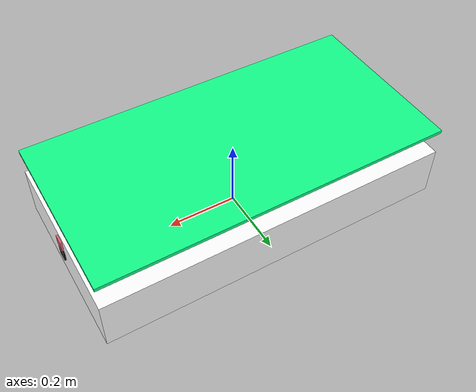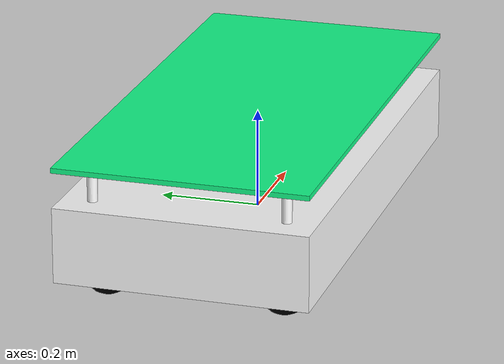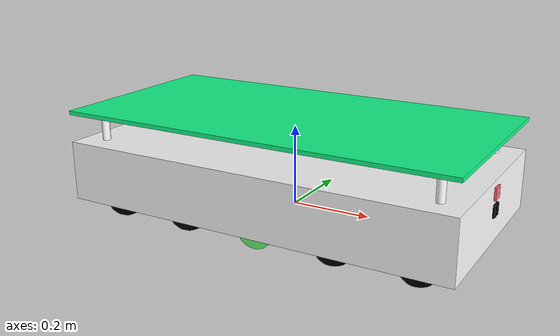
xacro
<?xml version="1.0"?>
<robot xmlns:xacro="http://www.ros.org/wiki/xacro"  name="robot">

    <xacro:arg name="use_ros2_control" default="true"/>

    <xacro:include filename="robotCore.xacro" />
    <xacro:if value="$(arg use_ros2_control)">
        <xacro:include filename="ros2_control.xacro" />
    </xacro:if>
    <xacro:unless value="$(arg use_ros2_control)">
        <xacro:include filename="gazebo_control.xacro" />
    </xacro:unless>
    <xacro:include filename = "lidar.xacro" />
    <xacro:include filename = "camera.xacro" />
    <xacro:include filename = "depthCamera.xacro" />

</robot>

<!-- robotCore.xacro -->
<robot xmlns:xacro="http://www.ros.org/wiki/xacro">

    <xacro:include filename="inertia_macros.xacro" />

    <material name="white">
        <color rgba="1 1 1 1"/>
    </material>

    <material name="orange">
        <color rgba="1 0.3 0.1 1"/>
    </material>

    <material name="blue">
        <color rgba="0.2 0.2 1 1"/>
    </material>

    <material name="black">
        <color rgba="0 0 0 1"/>
    </material>

    <material name="red">
        <color rgba="0.990 0.396 0.455 1"/>
    </material>

    <material name="green">
        <color rgba="0.396 0.990 0.436 1"/>
    </material>

    <material name="sea">
        <color rgba="0.0693 0.990 0.545 1"/>
    </material>

    <!--base_link is the root link of the robot-->
    <link name="base_link">

    </link>

    <!--Foot print link-->
    <joint name="base_footprint_joint" type="fixed">
        <parent link="base_link"/>
        <child link="base_footprint"/>
        <origin xyz="0 0 0" rpy="0 0 0"/>
    </joint>

    <link name="base_footprint">
    </link>

    <joint name="chassis_joint" type="fixed">
        <origin xyz="-0.15 0 0" rpy="0 0 0"/>
        <parent link="base_link"/>
        <child link="chassis"/>
    </joint>

    <link name="chassis">
        <visual>
            <origin xyz="0.15 0 0.075" rpy="0 0 0"/>
            <geometry>
                <box size="1.0 0.5 0.15"/>
            </geometry>
            <material name="white"/>
        </visual>
        <collision>
            <origin xyz="0.15 0 0.075" rpy="0 0 0"/>
            <geometry>
                <box size="1.0 0.5 0.15"/>
            </geometry>
        </collision>
        <xacro:inertial_box mass="0.5" x="1.0" y="0.5" z="0.15">
            <origin xyz="0.15 0 0.075" rpy="0 0 0"/>
        </xacro:inertial_box>
    </link>

    <gazebo reference="chassis">
        <material>Gazebo/White</material>
    </gazebo>

        <!-- Define the table top -->
    <link name="table_top">
        <visual>
            <origin xyz="0.15 0 0.075" rpy="0 0 0"/>
            <geometry>
                <box size="1.0 0.5 0.01"/>
            </geometry>
            <material name="sea"/>
        </visual>
        <collision>
            <origin xyz="0 0 0.015" rpy="0 0 0"/>
            <geometry>
                <box size="0.15 0 0.075"/>
            </geometry>
        </collision>
    </link>

    <!-- Define the legs -->
    <xacro:macro name="leg" params="name x y">
        <link name="${name}">
            <visual>
                <origin xyz="${x} ${y} 0.075" rpy="0 0 0"/>
                <geometry>
                    <cylinder radius="0.01" length="0.15"/>
                </geometry>
                <material name="white"/>
            </visual>
            <collision>
                <origin xyz="${x} ${y} 0.075" rpy="0 0 0"/>
                <geometry>
                    <cylinder radius="0.01" length="0.15"/>
                </geometry>
            </collision>
        </link>
    </xacro:macro>

    <xacro:leg name="leg1" x="0.22" y="0.095"/>
    <xacro:leg name="leg2" x="0.22" y="-0.095"/>
    <xacro:leg name="leg3" x="-0.22" y="0.095"/>
    <xacro:leg name="leg4" x="-0.22" y="-0.095"/>

    <!-- Define joints for the legs -->
    <xacro:macro name="leg_joint" params="name parent child x y">
        <joint name="${name}" type="fixed">
            <origin xyz="${x} ${y} 0.075" rpy="0 0 0"/>
            <parent link="${parent}"/>
            <child link="${child}"/>
        </joint>
    </xacro:macro>

    <xacro:leg_joint name="leg1_joint" parent="base_link" child="leg1" x="0.22" y="0.095"/>
    <xacro:leg_joint name="leg2_joint" parent="base_link" child="leg2" x="0.22" y="-0.095"/>
    <xacro:leg_joint name="leg3_joint" parent="base_link" child="leg3" x="-0.22" y="0.095"/>
    <xacro:leg_joint name="leg4_joint" parent="base_link" child="leg4" x="-0.22" y="-0.095"/>

    <!-- Define joint for the table top -->
    <joint name="table_top_joint" type="fixed">
        <origin xyz="-0.15 0 0.15" rpy="0 0 0"/>
        <parent link="base_link"/>
        <child link="table_top"/>
    </joint>

    <gazebo reference="table_top">
        <material>Gazebo/Purple</material>
    </gazebo>

    <joint name="left_wheel_joint" type="continuous">
        <origin xyz="0 0.175 0" rpy="-${pi/2} 0 0"/>
        <parent link="base_link"/>
        <child link="left_wheel"/>
        <axis xyz="0 0 1"/>
    </joint>

    <link name="left_wheel">
        <visual>
            <origin xyz="0 0 0" rpy="0 0 0"/>
            <geometry>
                <cylinder radius="0.05" length="0.04"/>
            </geometry>
            <material name="red"/>
        </visual>
        <collision>
            <origin xyz="0 0 0" rpy="0 0 0"/>
            <geometry>
                <sphere radius="0.05"/>
            </geometry>
            <material name="red"/>
        </collision>
        <xacro:inertial_cylinder mass="0.2" length="0.04" radius="0.05">
            <origin xyz="0 0 0" rpy="0 0 0"/>
        </xacro:inertial_cylinder>
    </link>

    <gazebo reference="left_wheel">
        <material>Gazebo/Red</material>
    </gazebo>

    <joint name="right_wheel_joint" type="continuous">
        <origin xyz="0 -0.175 0" rpy="${pi/2} 0 0"/>
        <parent link="base_link"/>
        <child link="right_wheel"/>
        <axis xyz="0 0 -1"/>
    </joint>

    <link name="right_wheel">
        <visual>
            <origin xyz="0 0 0" rpy="0 0 0"/>
            <geometry>
                <cylinder radius="0.05" length="0.04"/>
            </geometry>
            <material name="green"/>
        </visual>
        <collision>
            <origin xyz="0 0 0" rpy="0 0 0"/>
            <geometry>
                <sphere radius="0.05"/>
            </geometry>
            <material name="green"/>
        </collision>
        <xacro:inertial_cylinder mass="0.2" length="0.04" radius="0.05">
            <origin xyz="0 0 0" rpy="0 0 0"/>
        </xacro:inertial_cylinder>
    </link>

    <gazebo reference="right_wheel">
        <material>Gazebo/Green</material>
    </gazebo>

    <xacro:macro name="caster_wheel" params="prefix parent_link x y z rpy color Gcolor">
        <joint name="${prefix}_caster_joint" type="fixed">
            <origin xyz="${x} ${y} ${z}" rpy="${rpy}"/>
            <parent link="${parent_link}"/>
            <child link="${prefix}_caster"/>
        </joint>

        <link name="${prefix}_caster">
            <visual>
            <geometry>
                <sphere radius="0.05"/>
            </geometry>
            <material name="black"/>
            </visual>
            <collision>
            <geometry>
                <sphere radius="0.05"/>
            </geometry>
            <material name="black"/>
            </collision>
            <xacro:inertial_sphere mass="0.1" radius="0.05">
            <origin xyz="0 0 0" rpy="0 0 0"/>
            </xacro:inertial_sphere>
        </link>

        <gazebo reference="${prefix}_caster">
            <material>Gazebo/Black</material>
            <mu1 value="0.0001"/>
            <mu2 value="0.0001"/>
        </gazebo>
        </xacro:macro>

        <!-- Left caster wheels -->
        <xacro:caster_wheel prefix="left_front" parent_link="base_link" x="0.4" y="0.175" z="0" rpy="0 0 0" Gcolor="Black" color="black"/>
        <xacro:caster_wheel prefix="left_middle1" parent_link="base_link" x="0.2" y="0.175" z="0" rpy="0 0 0" Gcolor="Black" color="black"/>
        <xacro:caster_wheel prefix="left_middle3" parent_link="base_link" x="-0.2" y="0.175" z="0" rpy="0 0 0" Gcolor="Black" color="black"/>
        <xacro:caster_wheel prefix="left_rear" parent_link="base_link" x="-0.4" y="0.175" z="0" rpy="0 0 0" Gcolor="Black" color="black"/>

        <!-- Right caster wheels -->
        <xacro:caster_wheel prefix="right_front" parent_link="base_link" x="0.4" y="-0.175" z="0" rpy="0 0 0" Gcolor="Black" color="black"/>
        <xacro:caster_wheel prefix="right_middle1" parent_link="base_link" x="0.2" y="-0.175" z="0" rpy="0 0 0" Gcolor="Black" color="black"/>
        <xacro:caster_wheel prefix="right_middle3" parent_link="base_link" x="-0.2" y="-0.175" z="0" rpy="0 0 0" Gcolor="Black" color="black"/>
        <xacro:caster_wheel prefix="right_rear" parent_link="base_link" x="-0.4" y="-0.175" z="0" rpy="0 0 0" Gcolor="Black" color="black"/>

</robot>

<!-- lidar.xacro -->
<robot xmlns:xacro="http://www.ros.org/wiki/xacro" >

    <joint name="laser_joint" type="fixed">
        <parent link="chassis"/>
        <child link="laser_frame"/>
        <origin xyz="0.15 0 0.16" rpy="0 0 0"/>
    </joint>

    <link name="laser_frame">
    <visual>
        <geometry>
            <cylinder radius="0.05" length="0.04"/>
        </geometry>
        <material name="black"/>
    </visual>
    <collision>
        <geometry>
            <cylinder radius="0.05" length="0.04"/>
        </geometry>
    </collision>
    <xacro:inertial_cylinder mass="0.1" length="0.04" radius="0.05">
        <origin xyz="0 0 0" rpy="0 0 0"/>
    </xacro:inertial_cylinder>
    </link>
    <gazebo reference="laser_frame">
        <material>Gazebo/Black</material>

        <sensor name="laser" type="ray">
            <pose> 0 0 0 0 0 0 </pose>
            <visualize>true</visualize>
            <update_rate>10</update_rate>
            <ray>
                <scan>
                    <horizontal>
                        <samples>360</samples>
                        <min_angle>-3.14</min_angle>
                        <max_angle>3.14</max_angle>
                    </horizontal>
                </scan>
                <range>
                    <min>0.6</min>
                    <max>12</max>
                </range>
            </ray>
            <plugin name="laser_controller" filename="libgazebo_ros_ray_sensor.so">
                <ros>
                    <argument>~/out:=scan</argument>
                </ros>
                <output_type>sensor_msgs/LaserScan</output_type>
                <frame_name>laser_frame</frame_name>
            </plugin>
        </sensor>

    </gazebo>

</robot>

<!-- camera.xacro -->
<robot xmlns:xacro="http://www.ros.org/wiki/xacro" >

    <joint name="camera_joint" type="fixed">
        <parent link="chassis"/>
        <child link="camera_link"/>
        <origin xyz="0.65 0 0.08" rpy="0 0 0"/>
    </joint>

    <link name="camera_link">
    <visual>
        <geometry>
            <box size="0.010 0.03 0.03"/>
        </geometry>
        <material name="black"/>
    </visual>
    <collision>
        <geometry>
            <box size="0.010 0.03 0.03"/>
        </geometry>
    </collision>
    </link>

    <joint name="camera_optical_joint" type="fixed">
            <parent link="camera_link"/>
            <child link="camera_link_optical"/>
            <origin xyz="0 0 0" rpy="${-pi/2} 0 ${-pi/2}"/>
    </joint>

    <link name="camera_link_optical"></link>

    <gazebo reference="camera_link">
        <material>Gazebo/Black</material>

        <sensor name="camera" type="camera">
            <pose> 0 0 0 0 0 0 </pose>
            <visualize>true</visualize>
            <update_rate>10</update_rate>
            <camera>
                <horizontal_fov>1.089</horizontal_fov>
                <image>
                    <format>R8G8B8</format>
                    <width>640</width>
                    <height>480</height>
                </image>
                <clip>
                    <near>0.05</near>
                    <far>8.0</far>
                </clip>
            </camera>
            <plugin name="camera_controller" filename="libgazebo_ros_camera.so">
                <frame_name>camera_link_optical</frame_name>
            </plugin>
        </sensor>
    </gazebo>

</robot>

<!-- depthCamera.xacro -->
<robot xmlns:xacro="http://www.ros.org/wiki/xacro" >

    <joint name="depthCamera_joint" type="fixed">
        <parent link="chassis"/>
        <child link="depthCamera_link"/>
        <origin xyz="0.65 0 0.12" rpy="0 0 0"/>
    </joint>

    <link name="depthCamera_link">
    <visual>
        <geometry>
            <box size="0.010 0.03 0.03"/>
        </geometry>
        <material name="red"/>
    </visual>
    <collision>
        <geometry>
            <box size="0.010 0.03 0.03"/>
        </geometry>
    </collision>
    </link>

    <joint name="depthCamera_optical_joint" type="fixed">
            <parent link="depthCamera_link"/>
            <child link="depthCamera_link_optical"/>
            <origin xyz="0 0 0" rpy="${-pi/2} 0 ${-pi/2}"/>
    </joint>

    <link name="depthCamera_link_optical"></link>

    <gazebo reference="depthCamera_link">
        <material>Gazebo/Red</material>

        <sensor name="camera" type="depth">
            <pose> 0 0 0 0 0 0 </pose>
            <visualize>true</visualize>
            <update_rate>10</update_rate>
            <camera>
                <horizontal_fov>1.089</horizontal_fov>
                <image>
                    <format>B8G8R8</format>
                    <width>640</width>
                    <height>480</height>
                </image>
                <clip>
                    <near>0.05</near>
                    <far>8.0</far>
                </clip>
            </camera>
            <plugin name="depthCamera_controller" filename="libgazebo_ros_camera.so">
                <frame_name>depthCamera_link_optical</frame_name>
                <min_depth>0.1</min_depth>
                <max_depth>100</max_depth>
            </plugin>
        </sensor>
    </gazebo>

</robot>
